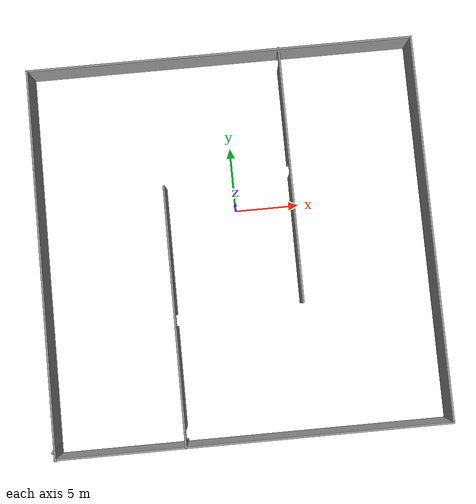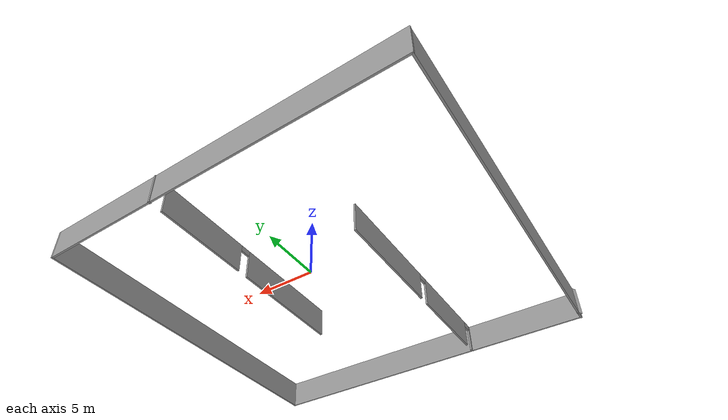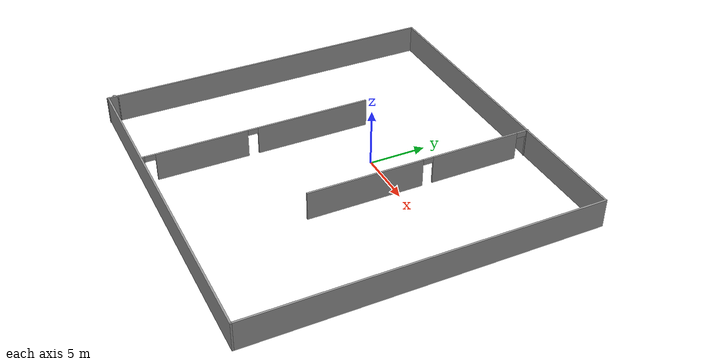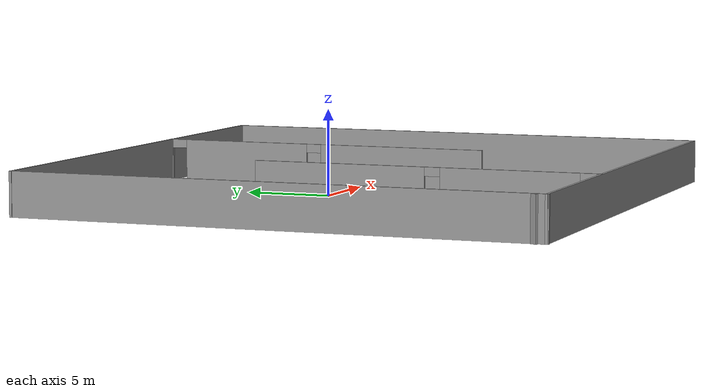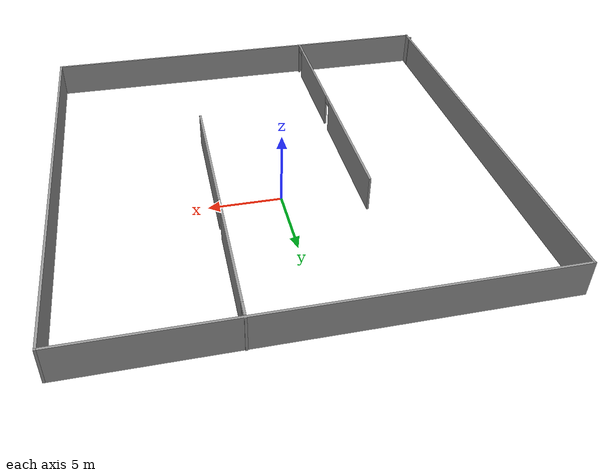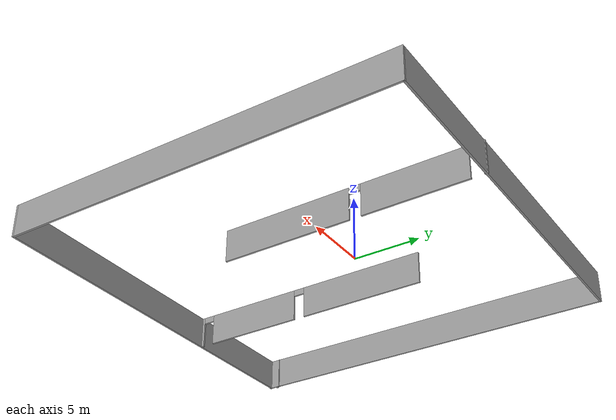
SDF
<?xml version='1.0'?>
<sdf version='1.7'>
  <model name='complex'>
    <pose>-0.280872 -2.83037 0 0 -0 0</pose>
    <link name='Wall_10'>
      <collision name='Wall_10_Collision'>
        <geometry>
          <box>
            <size>30.25 0.15 2.5</size>
          </box>
        </geometry>
        <pose>0 0 1.25 0 -0 0</pose>
      </collision>
      <visual name='Wall_10_Visual'>
        <pose>0 0 1.25 0 -0 0</pose>
        <geometry>
          <box>
            <size>30.25 0.15 2.5</size>
          </box>
        </geometry>
        <material>
          <script>
            <uri>file://media/materials/scripts/gazebo.material</uri>
            <name>Gazebo/Grey</name>
          </script>
          <ambient>1 1 1 1</ambient>
        </material>
        <meta>
          <layer>0</layer>
        </meta>
      </visual>
      <pose>0.086223 -14.9224 0 0 -0 3.14159</pose>
    </link>
    <link name='Wall_12'>
      <collision name='Wall_12_Collision'>
        <geometry>
          <box>
            <size>0.5 0.15 2.5</size>
          </box>
        </geometry>
        <pose>0 0 1.25 0 -0 0</pose>
      </collision>
      <visual name='Wall_12_Visual'>
        <pose>0 0 1.25 0 -0 0</pose>
        <geometry>
          <box>
            <size>0.5 0.15 2.5</size>
          </box>
        </geometry>
        <material>
          <script>
            <uri>file://media/materials/scripts/gazebo.material</uri>
            <name>Gazebo/Grey</name>
          </script>
          <ambient>0 0 0 1</ambient>
        </material>
        <meta>
          <layer>0</layer>
        </meta>
      </visual>
      <pose>-15.0213 -14.2529 0 0 -0 -2.0944</pose>
    </link>
    <link name='Wall_15'>
      <pose>-5.09486 -4.97241 0 0 -0 -1.5708</pose>
      <visual name='Wall_15_Visual_0'>
        <pose>-4.99774 0 1.25 0 -0 0</pose>
        <geometry>
          <box>
            <size>10.0045 0.15 2.5</size>
          </box>
        </geometry>
        <material>
          <script>
            <uri>file://media/materials/scripts/gazebo.material</uri>
            <name>Gazebo/Grey</name>
          </script>
          <ambient>1 1 1 1</ambient>
        </material>
        <meta>
          <layer>0</layer>
        </meta>
      </visual>
      <collision name='Wall_15_Collision_0'>
        <geometry>
          <box>
            <size>10.0045 0.15 2.5</size>
          </box>
        </geometry>
        <pose>-4.99774 0 1.25 0 -0 0</pose>
      </collision>
      <visual name='Wall_15_Visual_1'>
        <pose>4.83796 0 1.25 0 -0 0</pose>
        <geometry>
          <box>
            <size>7.86689 0.15 2.5</size>
          </box>
        </geometry>
        <material>
          <script>
            <uri>file://media/materials/scripts/gazebo.material</uri>
            <name>Gazebo/Grey</name>
          </script>
          <ambient>1 1 1 1</ambient>
        </material>
        <meta>
          <layer>0</layer>
        </meta>
      </visual>
      <collision name='Wall_15_Collision_1'>
        <geometry>
          <box>
            <size>7.86689 0.15 2.5</size>
          </box>
        </geometry>
        <pose>4.83796 0 1.25 0 -0 0</pose>
      </collision>
      <visual name='Wall_15_Visual_2'>
        <pose>9.8357 0 1.25 0 -0 0</pose>
        <geometry>
          <box>
            <size>0.328596 0.15 2.5</size>
          </box>
        </geometry>
        <material>
          <script>
            <uri>file://media/materials/scripts/gazebo.material</uri>
            <name>Gazebo/Grey</name>
          </script>
          <ambient>1 1 1 1</ambient>
        </material>
        <meta>
          <layer>0</layer>
        </meta>
      </visual>
      <collision name='Wall_15_Collision_2'>
        <geometry>
          <box>
            <size>0.328596 0.15 2.5</size>
          </box>
        </geometry>
        <pose>9.8357 0 1.25 0 -0 0</pose>
      </collision>
      <visual name='Wall_15_Visual_3'>
        <pose>0.454515 0 2.25 0 -0 0</pose>
        <geometry>
          <box>
            <size>0.9 0.15 0.5</size>
          </box>
        </geometry>
        <material>
          <script>
            <uri>file://media/materials/scripts/gazebo.material</uri>
            <name>Gazebo/Grey</name>
          </script>
          <ambient>1 1 1 1</ambient>
        </material>
        <meta>
          <layer>0</layer>
        </meta>
      </visual>
      <collision name='Wall_15_Collision_3'>
        <geometry>
          <box>
            <size>0.9 0.15 0.5</size>
          </box>
        </geometry>
        <pose>0.454515 0 2.25 0 -0 0</pose>
      </collision>
      <visual name='Wall_15_Visual_4'>
        <pose>9.2214 0 2.25 0 -0 0</pose>
        <geometry>
          <box>
            <size>0.9 0.15 0.5</size>
          </box>
        </geometry>
        <material>
          <script>
            <uri>file://media/materials/scripts/gazebo.material</uri>
            <name>Gazebo/Grey</name>
          </script>
          <ambient>1 1 1 1</ambient>
        </material>
        <meta>
          <layer>0</layer>
        </meta>
      </visual>
      <collision name='Wall_15_Collision_4'>
        <geometry>
          <box>
            <size>0.9 0.15 0.5</size>
          </box>
        </geometry>
        <pose>9.2214 0 2.25 0 -0 0</pose>
      </collision>
    </link>
    <link name='Wall_2'>
      <collision name='Wall_2_Collision'>
        <geometry>
          <box>
            <size>30 0.15 2.5</size>
          </box>
        </geometry>
        <pose>0 0 1.25 0 -0 0</pose>
      </collision>
      <visual name='Wall_2_Visual'>
        <pose>0 0 1.25 0 -0 0</pose>
        <geometry>
          <box>
            <size>30 0.15 2.5</size>
          </box>
        </geometry>
        <material>
          <script>
            <uri>file://media/materials/scripts/gazebo.material</uri>
            <name>Gazebo/Grey</name>
          </script>
          <ambient>1 1 1 1</ambient>
        </material>
        <meta>
          <layer>0</layer>
        </meta>
      </visual>
      <pose>-14.9428 -0.056573 0 0 -0 -1.5708</pose>
    </link>
    <link name='Wall_20'>
      <pose>4.76148 5.05657 0 0 -0 1.5708</pose>
      <visual name='Wall_20_Visual_0'>
        <pose>-4.96479 0 1.25 0 -0 0</pose>
        <geometry>
          <box>
            <size>10.0704 0.15 2.5</size>
          </box>
        </geometry>
        <material>
          <script>
            <uri>file://media/materials/scripts/gazebo.material</uri>
            <name>Gazebo/Grey</name>
          </script>
          <ambient>1 1 1 1</ambient>
        </material>
        <meta>
          <layer>0</layer>
        </meta>
      </visual>
      <collision name='Wall_20_Collision_0'>
        <geometry>
          <box>
            <size>10.0704 0.15 2.5</size>
          </box>
        </geometry>
        <pose>-4.96479 0 1.25 0 -0 0</pose>
      </collision>
      <visual name='Wall_20_Visual_1'>
        <pose>4.90985 0 1.25 0 -0 0</pose>
        <geometry>
          <box>
            <size>7.87886 0.15 2.5</size>
          </box>
        </geometry>
        <material>
          <script>
            <uri>file://media/materials/scripts/gazebo.material</uri>
            <name>Gazebo/Grey</name>
          </script>
          <ambient>1 1 1 1</ambient>
        </material>
        <meta>
          <layer>0</layer>
        </meta>
      </visual>
      <collision name='Wall_20_Collision_1'>
        <geometry>
          <box>
            <size>7.87886 0.15 2.5</size>
          </box>
        </geometry>
        <pose>4.90985 0 1.25 0 -0 0</pose>
      </collision>
      <visual name='Wall_20_Visual_2'>
        <pose>9.87464 0 1.25 0 -0 0</pose>
        <geometry>
          <box>
            <size>0.250722 0.15 2.5</size>
          </box>
        </geometry>
        <material>
          <script>
            <uri>file://media/materials/scripts/gazebo.material</uri>
            <name>Gazebo/Grey</name>
          </script>
          <ambient>1 1 1 1</ambient>
        </material>
        <meta>
          <layer>0</layer>
        </meta>
      </visual>
      <collision name='Wall_20_Collision_2'>
        <geometry>
          <box>
            <size>0.250722 0.15 2.5</size>
          </box>
        </geometry>
        <pose>9.87464 0 1.25 0 -0 0</pose>
      </collision>
      <visual name='Wall_20_Visual_3'>
        <pose>0.520418 0 2.25 0 -0 0</pose>
        <geometry>
          <box>
            <size>0.9 0.15 0.5</size>
          </box>
        </geometry>
        <material>
          <script>
            <uri>file://media/materials/scripts/gazebo.material</uri>
            <name>Gazebo/Grey</name>
          </script>
          <ambient>1 1 1 1</ambient>
        </material>
        <meta>
          <layer>0</layer>
        </meta>
      </visual>
      <collision name='Wall_20_Collision_3'>
        <geometry>
          <box>
            <size>0.9 0.15 0.5</size>
          </box>
        </geometry>
        <pose>0.520418 0 2.25 0 -0 0</pose>
      </collision>
      <visual name='Wall_20_Visual_4'>
        <pose>9.29928 0 2.25 0 -0 0</pose>
        <geometry>
          <box>
            <size>0.9 0.15 0.5</size>
          </box>
        </geometry>
        <material>
          <script>
            <uri>file://media/materials/scripts/gazebo.material</uri>
            <name>Gazebo/Grey</name>
          </script>
          <ambient>1 1 1 1</ambient>
        </material>
        <meta>
          <layer>0</layer>
        </meta>
      </visual>
      <collision name='Wall_20_Collision_4'>
        <geometry>
          <box>
            <size>0.9 0.15 0.5</size>
          </box>
        </geometry>
        <pose>9.29928 0 2.25 0 -0 0</pose>
      </collision>
    </link>
    <link name='Wall_6'>
      <collision name='Wall_6_Collision'>
        <geometry>
          <box>
            <size>30.25 0.15 2.5</size>
          </box>
        </geometry>
        <pose>0 0 1.25 0 -0 0</pose>
      </collision>
      <visual name='Wall_6_Visual'>
        <pose>0 0 1.25 0 -0 0</pose>
        <geometry>
          <box>
            <size>30.25 0.15 2.5</size>
          </box>
        </geometry>
        <material>
          <script>
            <uri>file://media/materials/scripts/gazebo.material</uri>
            <name>Gazebo/Grey</name>
          </script>
          <ambient>1 1 1 1</ambient>
        </material>
        <meta>
          <layer>0</layer>
        </meta>
      </visual>
      <pose>0.086223 14.9276 0 0 -0 0</pose>
    </link>
    <link name='Wall_9'>
      <collision name='Wall_9_Collision'>
        <geometry>
          <box>
            <size>30 0.15 2.5</size>
          </box>
        </geometry>
        <pose>0 0 1.25 0 -0 0</pose>
      </collision>
      <visual name='Wall_9_Visual'>
        <pose>0 0 1.25 0 -0 0</pose>
        <geometry>
          <box>
            <size>30 0.15 2.5</size>
          </box>
        </geometry>
        <material>
          <script>
            <uri>file://media/materials/scripts/gazebo.material</uri>
            <name>Gazebo/Grey</name>
          </script>
          <ambient>1 1 1 1</ambient>
        </material>
        <meta>
          <layer>0</layer>
        </meta>
      </visual>
      <pose>15.1362 0.002609 0 0 -0 -1.5708</pose>
    </link>
    <static>1</static>
  </model>
</sdf>
